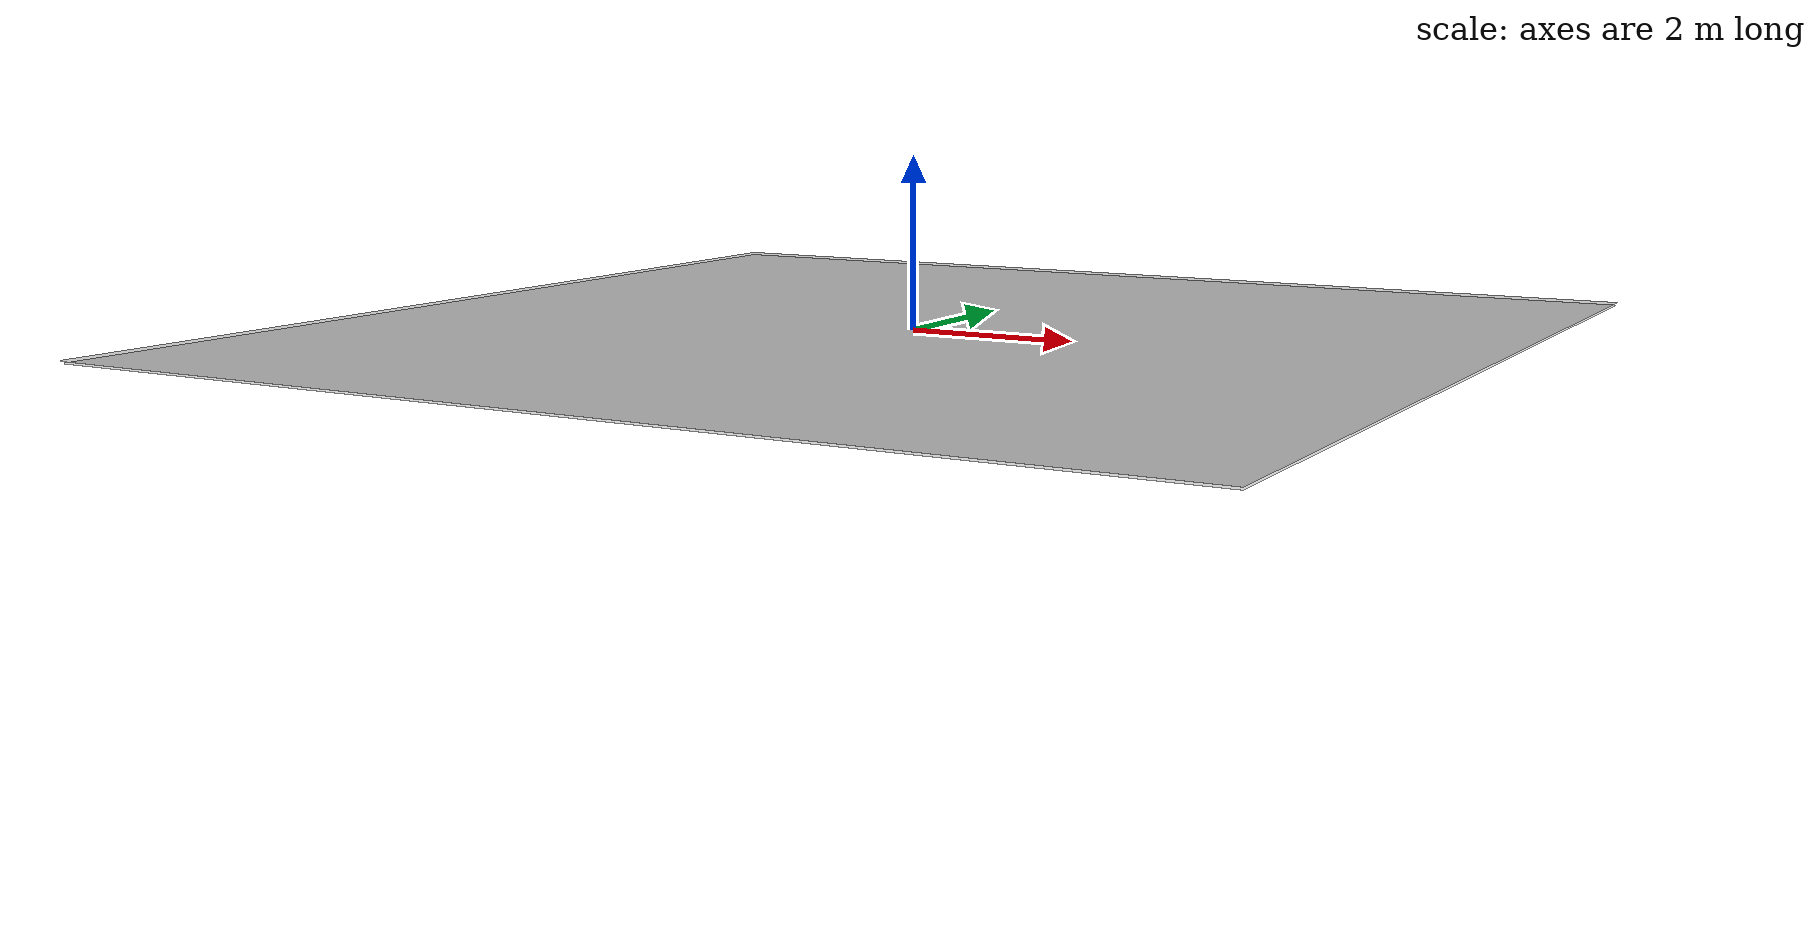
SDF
<?xml version='1.0'?>
<sdf version="1.5">

  <model name="ceiling">
    <static>true</static>
    <link name="link">
      <pose>0 0 0 0 0 0</pose>
      <collision name="collision">
        <geometry>
          <box>
            <size>13 13 0.01</size>
          </box>
        </geometry>
      </collision>
      <visual name="visual">
        <geometry>
          <plane>
            <normal>0 0 1</normal>
            <size>13 13</size>
          </plane>
        </geometry>
        <material>
          <diffuse>1 1 1 1</diffuse>
          <script>
            <uri>../../media/materials/scripts/my.material</uri>
            <name>ceiling</name>
          </script>
        </material>
      </visual>
    </link>

    <link name="link2">
      <visual name="visual2">
        <pose>0 0 0.01 0 0 0</pose>
        <transparency>0.7</transparency>
        <geometry>
          <box>
            <size>13 13 0.01</size>
          </box>
        </geometry>
        <material>
          <diffuse>0.25 0.25 0.25 1</diffuse>
          <script>
            <uri>../../media/materials/scripts/my.material</uri>
            <name>ceiling</name>
          </script>
        </material>
      </visual>
    </link>

  </model>
</sdf>
